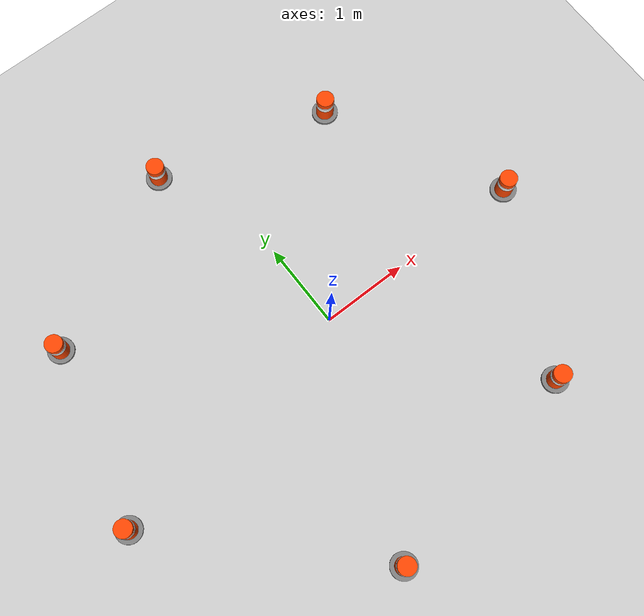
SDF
<?xml version="1.0" ?>
<sdf version="1.7">
  <world name="cones_world">

    <!-- ═══════════════════════════════════════════════
         Physics – identical to empty_world
         ═══════════════════════════════════════════════ -->
    <physics name="ode_physics" type="ode">
      <max_step_size>0.001</max_step_size>
      <real_time_factor>1.0</real_time_factor>
      <real_time_update_rate>1000</real_time_update_rate>
      <gravity>0 0 -9.8</gravity>
      <ode>
        <solver>
          <type>quick</type>
          <iters>150</iters>
          <precon_iters>0</precon_iters>
          <sor>1.4</sor>
          <use_dynamic_moi_rescaling>1</use_dynamic_moi_rescaling>
        </solver>
        <constraints>
          <cfm>0.00001</cfm>
          <erp>0.2</erp>
          <contact_max_correcting_vel>2000.0</contact_max_correcting_vel>
          <contact_surface_layer>0.01</contact_surface_layer>
        </constraints>
      </ode>
    </physics>

    <!-- Scene -->
    <scene>
      <ambient>0.4 0.4 0.4 1</ambient>
      <background>0.7 0.7 0.7 1</background>
      <shadows>true</shadows>
      <grid>false</grid>
      <origin_visual>false</origin_visual>
    </scene>

    <!-- Lighting -->
    <light name="sun" type="directional">
      <cast_shadows>true</cast_shadows>
      <pose>0 0 10 0 0 0</pose>
      <diffuse>1.0 1.0 1.0 1</diffuse>
      <specular>0.2 0.2 0.2 1</specular>
      <attenuation>
        <range>1000</range>
        <constant>0.9</constant>
        <linear>0.01</linear>
        <quadratic>0.001</quadratic>
      </attenuation>
      <direction>-0.5 0.1 -0.9</direction>
    </light>

    <!-- Ground Plane -->
    <model name="ground_plane">
      <static>true</static>
      <link name="link">
        <collision name="collision">
          <geometry>
            <plane>
              <normal>0 0 1</normal>
              <size>200 200</size>
            </plane>
          </geometry>
          <surface>
            <friction>
              <ode>
                <mu>100</mu>
                <mu2>50</mu2>
              </ode>
              <torsional><ode/></torsional>
            </friction>
            <contact><ode/></contact>
            <bounce/>
          </surface>
          <max_contacts>10</max_contacts>
        </collision>
        <visual name="visual">
          <cast_shadows>false</cast_shadows>
          <geometry>
            <plane>
              <normal>0 0 1</normal>
              <size>200 200</size>
            </plane>
          </geometry>
          <material>
            <script>
              <uri>file://media/materials/scripts/gazebo.material</uri>
              <name>Gazebo/Grey</name>
            </script>
          </material>
        </visual>
      </link>
    </model>

    <!-- Cone 1 – ( 2.5,  0.0) -->
    <model name="obstacle_cone_1">
      <static>true</static>
      <pose>2.5 0.0 0.175 0 0 0</pose>
      <link name="link">
        <collision name="collision">
          <geometry>
            <cylinder><radius>0.10</radius><length>0.35</length></cylinder>
          </geometry>
          <surface>
            <friction><ode><mu>0.8</mu><mu2>0.8</mu2></ode></friction>
          </surface>
        </collision>
        <!-- Orange cone body -->
        <visual name="body">
          <geometry>
            <cylinder><radius>0.10</radius><length>0.32</length></cylinder>
          </geometry>
          <material>
            <ambient>1.0 0.27 0.0 1</ambient>
            <diffuse>1.0 0.27 0.0 1</diffuse>
            <specular>0.3 0.15 0.0 1</specular>
            <emissive>0.0 0.0 0.0 1</emissive>
          </material>
        </visual>
        <!-- White reflective stripe -->
        <visual name="stripe">
          <pose>0 0 0.06 0 0 0</pose>
          <geometry>
            <cylinder><radius>0.102</radius><length>0.06</length></cylinder>
          </geometry>
          <material>
            <ambient>0.95 0.95 0.95 1</ambient>
            <diffuse>0.95 0.95 0.95 1</diffuse>
          </material>
        </visual>
        <!-- Grey base plate -->
        <visual name="base">
          <pose>0 0 -0.16 0 0 0</pose>
          <geometry>
            <cylinder><radius>0.15</radius><length>0.03</length></cylinder>
          </geometry>
          <material>
            <ambient>0.5 0.5 0.5 1</ambient>
            <diffuse>0.5 0.5 0.5 1</diffuse>
          </material>
        </visual>
      </link>
    </model>

    <!-- Cone 2 – ( 1.5,  2.0) -->
    <model name="obstacle_cone_2">
      <static>true</static>
      <pose>1.5 2.0 0.175 0 0 0</pose>
      <link name="link">
        <collision name="collision">
          <geometry>
            <cylinder><radius>0.10</radius><length>0.35</length></cylinder>
          </geometry>
          <surface>
            <friction><ode><mu>0.8</mu><mu2>0.8</mu2></ode></friction>
          </surface>
        </collision>
        <visual name="body">
          <geometry>
            <cylinder><radius>0.10</radius><length>0.32</length></cylinder>
          </geometry>
          <material>
            <ambient>1.0 0.27 0.0 1</ambient>
            <diffuse>1.0 0.27 0.0 1</diffuse>
            <specular>0.3 0.15 0.0 1</specular>
            <emissive>0.0 0.0 0.0 1</emissive>
          </material>
        </visual>
        <visual name="stripe">
          <pose>0 0 0.06 0 0 0</pose>
          <geometry>
            <cylinder><radius>0.102</radius><length>0.06</length></cylinder>
          </geometry>
          <material>
            <ambient>0.95 0.95 0.95 1</ambient>
            <diffuse>0.95 0.95 0.95 1</diffuse>
          </material>
        </visual>
        <visual name="base">
          <pose>0 0 -0.16 0 0 0</pose>
          <geometry>
            <cylinder><radius>0.15</radius><length>0.03</length></cylinder>
          </geometry>
          <material>
            <ambient>0.5 0.5 0.5 1</ambient>
            <diffuse>0.5 0.5 0.5 1</diffuse>
          </material>
        </visual>
      </link>
    </model>

    <!-- Cone 3 – (-0.5,  2.5) -->
    <model name="obstacle_cone_3">
      <static>true</static>
      <pose>-0.5 2.5 0.175 0 0 0</pose>
      <link name="link">
        <collision name="collision">
          <geometry>
            <cylinder><radius>0.10</radius><length>0.35</length></cylinder>
          </geometry>
          <surface>
            <friction><ode><mu>0.8</mu><mu2>0.8</mu2></ode></friction>
          </surface>
        </collision>
        <visual name="body">
          <geometry>
            <cylinder><radius>0.10</radius><length>0.32</length></cylinder>
          </geometry>
          <material>
            <ambient>1.0 0.27 0.0 1</ambient>
            <diffuse>1.0 0.27 0.0 1</diffuse>
            <specular>0.3 0.15 0.0 1</specular>
            <emissive>0.0 0.0 0.0 1</emissive>
          </material>
        </visual>
        <visual name="stripe">
          <pose>0 0 0.06 0 0 0</pose>
          <geometry>
            <cylinder><radius>0.102</radius><length>0.06</length></cylinder>
          </geometry>
          <material>
            <ambient>0.95 0.95 0.95 1</ambient>
            <diffuse>0.95 0.95 0.95 1</diffuse>
          </material>
        </visual>
        <visual name="base">
          <pose>0 0 -0.16 0 0 0</pose>
          <geometry>
            <cylinder><radius>0.15</radius><length>0.03</length></cylinder>
          </geometry>
          <material>
            <ambient>0.5 0.5 0.5 1</ambient>
            <diffuse>0.5 0.5 0.5 1</diffuse>
          </material>
        </visual>
      </link>
    </model>

    <!-- Cone 4 – (-2.5,  1.5) -->
    <model name="obstacle_cone_4">
      <static>true</static>
      <pose>-2.5 1.5 0.175 0 0 0</pose>
      <link name="link">
        <collision name="collision">
          <geometry>
            <cylinder><radius>0.10</radius><length>0.35</length></cylinder>
          </geometry>
          <surface>
            <friction><ode><mu>0.8</mu><mu2>0.8</mu2></ode></friction>
          </surface>
        </collision>
        <visual name="body">
          <geometry>
            <cylinder><radius>0.10</radius><length>0.32</length></cylinder>
          </geometry>
          <material>
            <ambient>1.0 0.27 0.0 1</ambient>
            <diffuse>1.0 0.27 0.0 1</diffuse>
            <specular>0.3 0.15 0.0 1</specular>
            <emissive>0.0 0.0 0.0 1</emissive>
          </material>
        </visual>
        <visual name="stripe">
          <pose>0 0 0.06 0 0 0</pose>
          <geometry>
            <cylinder><radius>0.102</radius><length>0.06</length></cylinder>
          </geometry>
          <material>
            <ambient>0.95 0.95 0.95 1</ambient>
            <diffuse>0.95 0.95 0.95 1</diffuse>
          </material>
        </visual>
        <visual name="base">
          <pose>0 0 -0.16 0 0 0</pose>
          <geometry>
            <cylinder><radius>0.15</radius><length>0.03</length></cylinder>
          </geometry>
          <material>
            <ambient>0.5 0.5 0.5 1</ambient>
            <diffuse>0.5 0.5 0.5 1</diffuse>
          </material>
        </visual>
      </link>
    </model>

    <!-- Cone 5 – (-3.0, -0.5) -->
    <model name="obstacle_cone_5">
      <static>true</static>
      <pose>-3.0 -0.5 0.175 0 0 0</pose>
      <link name="link">
        <collision name="collision">
          <geometry>
            <cylinder><radius>0.10</radius><length>0.35</length></cylinder>
          </geometry>
          <surface>
            <friction><ode><mu>0.8</mu><mu2>0.8</mu2></ode></friction>
          </surface>
        </collision>
        <visual name="body">
          <geometry>
            <cylinder><radius>0.10</radius><length>0.32</length></cylinder>
          </geometry>
          <material>
            <ambient>1.0 0.27 0.0 1</ambient>
            <diffuse>1.0 0.27 0.0 1</diffuse>
            <specular>0.3 0.15 0.0 1</specular>
            <emissive>0.0 0.0 0.0 1</emissive>
          </material>
        </visual>
        <visual name="stripe">
          <pose>0 0 0.06 0 0 0</pose>
          <geometry>
            <cylinder><radius>0.102</radius><length>0.06</length></cylinder>
          </geometry>
          <material>
            <ambient>0.95 0.95 0.95 1</ambient>
            <diffuse>0.95 0.95 0.95 1</diffuse>
          </material>
        </visual>
        <visual name="base">
          <pose>0 0 -0.16 0 0 0</pose>
          <geometry>
            <cylinder><radius>0.15</radius><length>0.03</length></cylinder>
          </geometry>
          <material>
            <ambient>0.5 0.5 0.5 1</ambient>
            <diffuse>0.5 0.5 0.5 1</diffuse>
          </material>
        </visual>
      </link>
    </model>

    <!-- Cone 6 – (-1.0, -2.5) -->
    <model name="obstacle_cone_6">
      <static>true</static>
      <pose>-1.0 -2.5 0.175 0 0 0</pose>
      <link name="link">
        <collision name="collision">
          <geometry>
            <cylinder><radius>0.10</radius><length>0.35</length></cylinder>
          </geometry>
          <surface>
            <friction><ode><mu>0.8</mu><mu2>0.8</mu2></ode></friction>
          </surface>
        </collision>
        <visual name="body">
          <geometry>
            <cylinder><radius>0.10</radius><length>0.32</length></cylinder>
          </geometry>
          <material>
            <ambient>1.0 0.27 0.0 1</ambient>
            <diffuse>1.0 0.27 0.0 1</diffuse>
            <specular>0.3 0.15 0.0 1</specular>
            <emissive>0.0 0.0 0.0 1</emissive>
          </material>
        </visual>
        <visual name="stripe">
          <pose>0 0 0.06 0 0 0</pose>
          <geometry>
            <cylinder><radius>0.102</radius><length>0.06</length></cylinder>
          </geometry>
          <material>
            <ambient>0.95 0.95 0.95 1</ambient>
            <diffuse>0.95 0.95 0.95 1</diffuse>
          </material>
        </visual>
        <visual name="base">
          <pose>0 0 -0.16 0 0 0</pose>
          <geometry>
            <cylinder><radius>0.15</radius><length>0.03</length></cylinder>
          </geometry>
          <material>
            <ambient>0.5 0.5 0.5 1</ambient>
            <diffuse>0.5 0.5 0.5 1</diffuse>
          </material>
        </visual>
      </link>
    </model>

    <!-- Cone 7 – ( 1.5, -2.0) -->
    <model name="obstacle_cone_7">
      <static>true</static>
      <pose>1.5 -2.0 0.175 0 0 0</pose>
      <link name="link">
        <collision name="collision">
          <geometry>
            <cylinder><radius>0.10</radius><length>0.35</length></cylinder>
          </geometry>
          <surface>
            <friction><ode><mu>0.8</mu><mu2>0.8</mu2></ode></friction>
          </surface>
        </collision>
        <visual name="body">
          <geometry>
            <cylinder><radius>0.10</radius><length>0.32</length></cylinder>
          </geometry>
          <material>
            <ambient>1.0 0.27 0.0 1</ambient>
            <diffuse>1.0 0.27 0.0 1</diffuse>
            <specular>0.3 0.15 0.0 1</specular>
            <emissive>0.0 0.0 0.0 1</emissive>
          </material>
        </visual>
        <visual name="stripe">
          <pose>0 0 0.06 0 0 0</pose>
          <geometry>
            <cylinder><radius>0.102</radius><length>0.06</length></cylinder>
          </geometry>
          <material>
            <ambient>0.95 0.95 0.95 1</ambient>
            <diffuse>0.95 0.95 0.95 1</diffuse>
          </material>
        </visual>
        <visual name="base">
          <pose>0 0 -0.16 0 0 0</pose>
          <geometry>
            <cylinder><radius>0.15</radius><length>0.03</length></cylinder>
          </geometry>
          <material>
            <ambient>0.5 0.5 0.5 1</ambient>
            <diffuse>0.5 0.5 0.5 1</diffuse>
          </material>
        </visual>
      </link>
    </model>

    <!-- ═══════════════════════════════════════════════
         ROS 2 Gazebo Plugins
         ═��═════════════════════════════════════════════ -->
    <plugin name="gazebo_ros_init"    filename="libgazebo_ros_init.so"/>
    <plugin name="gazebo_ros_factory" filename="libgazebo_ros_factory.so"/>
    <plugin name="gazebo_ros_state"   filename="libgazebo_ros_state.so"/>

  </world>
</sdf>
